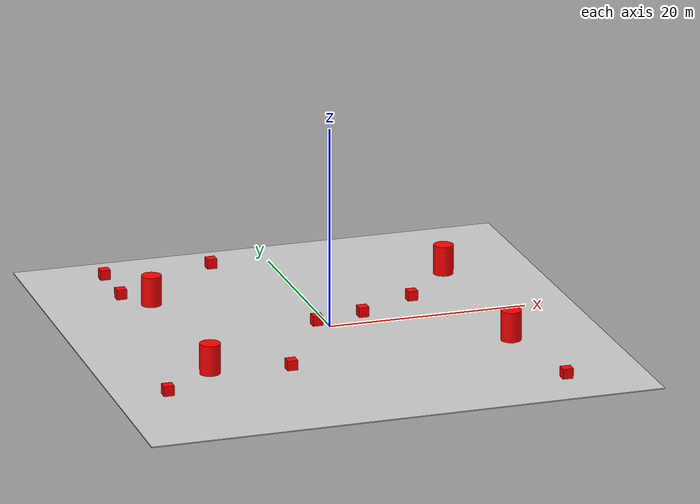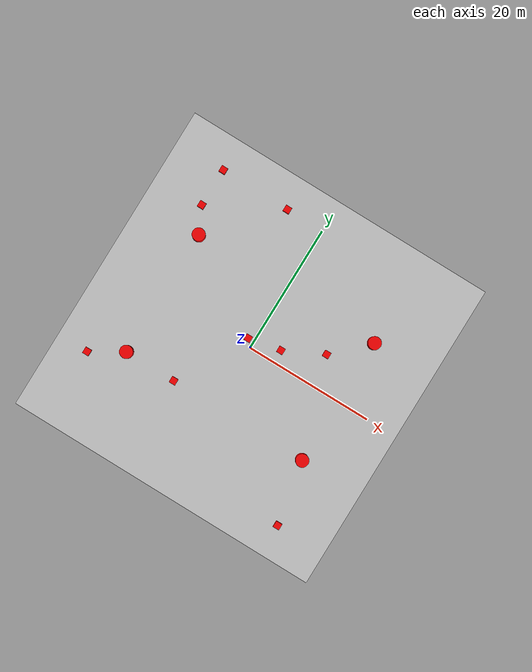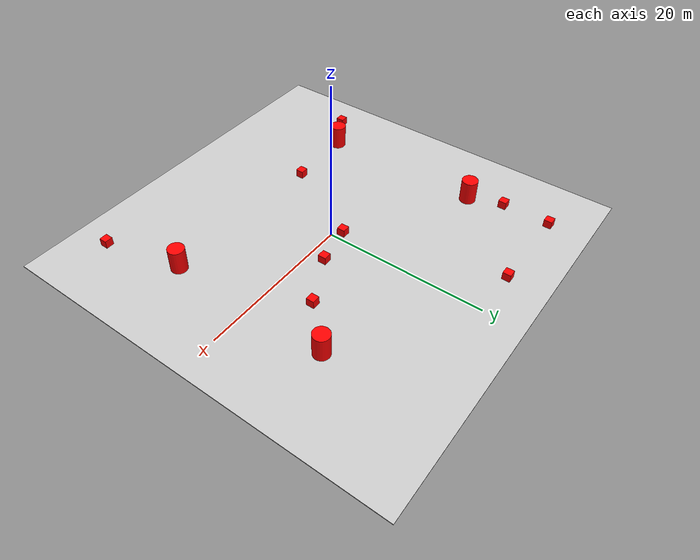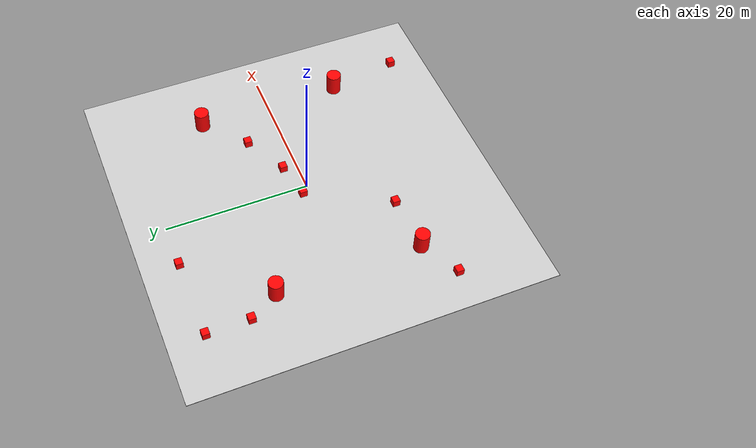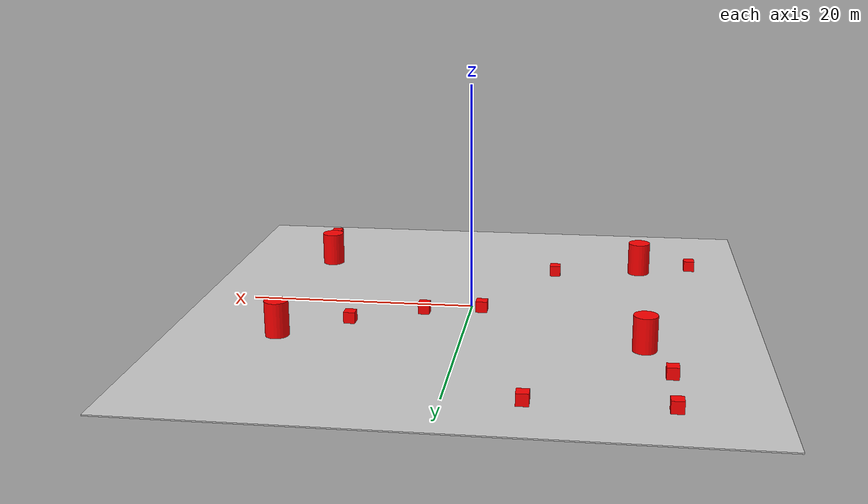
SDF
<?xml version="1.0" ?>
<!--
  Demo world consisting of a thermal camera sensor and several models with
  different temperatures specified via the thermal system plugin.
-->

<sdf version="1.6">
  <world name="thermal_camera">
    <physics name="1ms" type="ignored">
      <max_step_size>0.001</max_step_size>
      <real_time_factor>1.0</real_time_factor>
    </physics>
    <plugin
      filename="ignition-gazebo-physics-system"
      name="ignition::gazebo::systems::Physics">
    </plugin>
    <plugin
      filename="ignition-gazebo-scene-broadcaster-system"
      name="ignition::gazebo::systems::SceneBroadcaster">
    </plugin>
    <plugin
      filename="ignition-gazebo-user-commands-system"
      name="ignition::gazebo::systems::UserCommands">
    </plugin>

    <gui fullscreen="0">

      <!-- 3D scene -->
      <plugin filename="GzScene3D" name="3D View">
        <ignition-gui>
          <title>3D View</title>
          <property type="bool" key="showTitleBar">false</property>
          <property type="string" key="state">docked</property>
        </ignition-gui>

        <engine>ogre2</engine>
        <scene>scene</scene>
        <ambient_light>0.4 0.4 0.4</ambient_light>
        <background_color>0.8 0.8 0.8</background_color>
        <camera_pose>-6 0 6 0 0.5 0</camera_pose>
      </plugin>

      <!-- World control -->
      <plugin filename="WorldControl" name="World control">
        <ignition-gui>
          <title>World control</title>
          <property type="bool" key="showTitleBar">false</property>
          <property type="bool" key="resizable">false</property>
          <property type="double" key="height">72</property>
          <property type="double" key="width">121</property>
          <property type="double" key="z">1</property>

          <property type="string" key="state">floating</property>
          <anchors target="3D View">
            <line own="left" target="left"/>
            <line own="bottom" target="bottom"/>
          </anchors>
        </ignition-gui>

        <play_pause>true</play_pause>
        <step>true</step>
        <start_paused>true</start_paused>
        <service>/world/thermal_camera/control</service>
        <stats_topic>/world/thermal_camera/stats</stats_topic>

      </plugin>

      <!-- World statistics -->
      <plugin filename="WorldStats" name="World stats">
        <ignition-gui>
          <title>World stats</title>
          <property type="bool" key="showTitleBar">false</property>
          <property type="bool" key="resizable">false</property>
          <property type="double" key="height">110</property>
          <property type="double" key="width">290</property>
          <property type="double" key="z">1</property>
          <property type="string" key="state">floating</property>
          <anchors target="3D View">
            <line own="right" target="right"/>
            <line own="bottom" target="bottom"/>
          </anchors>
        </ignition-gui>
        <sim_time>true</sim_time>
        <real_time>true</real_time>
        <real_time_factor>true</real_time_factor>
        <iterations>true</iterations>
        <topic>/world/thermal_camera/stats</topic>
      </plugin>

      <!-- Entitiy Tree -->
      <plugin filename="EntityTree" name="Entity tree">
        <ignition-gui>
          <property type="string" key="state">docked</property>
        </ignition-gui>
      </plugin>

      <!-- Key Publisher -->
      <plugin filename="KeyPublisher" name="Key publisher">
          <ignition-gui>
              <anchors target="3D View">
                  <line own="right" target="right"/>
                  <line own="top" target="top"/>
              </anchors>
              <property key="resizable" type="bool">false</property>
              <property key="width" type="double">5</property>
              <property key="height" type="double">5</property>
              <property key="state" type="string">floating</property>
              <property key="showTitleBar" type="bool">false</property>
          </ignition-gui>
      </plugin>
    </gui>

    <light type="directional" name="sun">
      <cast_shadows>true</cast_shadows>
      <pose>0 0 10 0 0 0</pose>
      <diffuse>0.8 0.8 0.8 1</diffuse>
      <specular>0.2 0.2 0.2 1</specular>
      <attenuation>
        <range>1000</range>
        <constant>0.9</constant>
        <linear>0.01</linear>
        <quadratic>0.001</quadratic>
      </attenuation>
      <direction>-0.5 0.1 -0.9</direction>
    </light>

    <atmosphere type="adiabatic">
      <temperature>250</temperature>
      <temperature_gradient>0.1</temperature_gradient>
    </atmosphere>

    <model name="ground_plane">
      <pose>0 0 -0.25 0 0 0</pose>
      <static>true</static>
      <link name="link">
        <collision name="collision">
          <geometry>
            <box>
              <size>50 50 0.1</size>
            </box>
          </geometry>
        </collision>
        <visual name="visual">
          <geometry>
            <box>
              <size>50 50 0.1</size>
            </box>
          </geometry>
          <material>
            <ambient>0.8 0.8 0.8 1</ambient>
            <diffuse>0.8 0.8 0.8 1</diffuse>
            <specular>0.8 0.8 0.8 1</specular>
          </material>
            <plugin
            filename="ignition-gazebo-thermal-system"
            name="ignition::gazebo::systems::Thermal">
            <temperature>100</temperature>
          </plugin>
        </visual>
      </link>
    </model>

    <!-- Box objects -->

    <model name="box1">
      <pose>-1 1 0.5 0 0 0</pose>
      <link name="box_link">
        <inertial>
          <inertia>
            <ixx>1</ixx>
            <ixy>0</ixy>
            <ixz>0</ixz>
            <iyy>1</iyy>
            <iyz>0</iyz>
            <izz>1</izz>
          </inertia>
          <mass>1.0</mass>
        </inertial>
        <collision name="box_collision">
          <geometry>
            <box>
              <size>1 1 1</size>
            </box>
          </geometry>
        </collision>

        <visual name="box_visual">
          <geometry>
            <box>
              <size>1 1 1</size>
            </box>
          </geometry>
          <material>
            <ambient>1 0 0 1</ambient>
            <diffuse>1 0 0 1</diffuse>
            <specular>1 0 0 1</specular>
          </material>
          <plugin
            filename="ignition-gazebo-thermal-system"
            name="ignition::gazebo::systems::Thermal">
            <temperature>600</temperature>
          </plugin>
        </visual>
      </link>
    </model>

    <model name="box2">
      <pose>4 2 0.5 0 0 0</pose>
      <link name="box_link">
        <inertial>
          <inertia>
            <ixx>1</ixx>
            <ixy>0</ixy>
            <ixz>0</ixz>
            <iyy>1</iyy>
            <iyz>0</iyz>
            <izz>1</izz>
          </inertia>
          <mass>1.0</mass>
        </inertial>
        <collision name="box_collision">
          <geometry>
            <box>
              <size>1 1 1</size>
            </box>
          </geometry>
        </collision>

        <visual name="box_visual">
          <geometry>
            <box>
              <size>1 1 1</size>
            </box>
          </geometry>
          <material>
            <ambient>1 0 0 1</ambient>
            <diffuse>1 0 0 1</diffuse>
            <specular>1 0 0 1</specular>
          </material>
          <plugin
            filename="ignition-gazebo-thermal-system"
            name="ignition::gazebo::systems::Thermal">
            <temperature>500</temperature>
          </plugin>
        </visual>
      </link>
    </model>

    <model name="box3">
      <pose>10 5 0.5 0 0 0</pose>
      <link name="box_link">
        <inertial>
          <inertia>
            <ixx>1</ixx>
            <ixy>0</ixy>
            <ixz>0</ixz>
            <iyy>1</iyy>
            <iyz>0</iyz>
            <izz>1</izz>
          </inertia>
          <mass>1.0</mass>
        </inertial>
        <collision name="box_collision">
          <geometry>
            <box>
              <size>1 1 1</size>
            </box>
          </geometry>
        </collision>

        <visual name="box_visual">
          <geometry>
            <box>
              <size>1 1 1</size>
            </box>
          </geometry>
          <material>
            <ambient>1 0 0 1</ambient>
            <diffuse>1 0 0 1</diffuse>
            <specular>1 0 0 1</specular>
          </material>
          <plugin
            filename="ignition-gazebo-thermal-system"
            name="ignition::gazebo::systems::Thermal">
            <temperature>350</temperature>
          </plugin>
        </visual>
      </link>
    </model>

    <model name="box4">
      <pose>-6 20 0.5 0 0 0</pose>
      <link name="box_link">
        <inertial>
          <inertia>
            <ixx>1</ixx>
            <ixy>0</ixy>
            <ixz>0</ixz>
            <iyy>1</iyy>
            <iyz>0</iyz>
            <izz>1</izz>
          </inertia>
          <mass>1.0</mass>
        </inertial>
        <collision name="box_collision">
          <geometry>
            <box>
              <size>1 1 1</size>
            </box>
          </geometry>
        </collision>

        <visual name="box_visual">
          <geometry>
            <box>
              <size>1 1 1</size>
            </box>
          </geometry>
          <material>
            <ambient>1 0 0 1</ambient>
            <diffuse>1 0 0 1</diffuse>
            <specular>1 0 0 1</specular>
          </material>
          <plugin
            filename="ignition-gazebo-thermal-system"
            name="ignition::gazebo::systems::Thermal">
            <temperature>800</temperature>
          </plugin>
        </visual>
      </link>
    </model>

    <model name="box5">
      <pose>-7 -10 0.5 0 0 0</pose>
      <link name="box_link">
        <inertial>
          <inertia>
            <ixx>1</ixx>
            <ixy>0</ixy>
            <ixz>0</ixz>
            <iyy>1</iyy>
            <iyz>0</iyz>
            <izz>1</izz>
          </inertia>
          <mass>1.0</mass>
        </inertial>
        <collision name="box_collision">
          <geometry>
            <box>
              <size>1 1 1</size>
            </box>
          </geometry>
        </collision>

        <visual name="box_visual">
          <geometry>
            <box>
              <size>1 1 1</size>
            </box>
          </geometry>
          <material>
            <ambient>1 0 0 1</ambient>
            <diffuse>1 0 0 1</diffuse>
            <specular>1 0 0 1</specular>
          </material>
          <plugin
            filename="ignition-gazebo-thermal-system"
            name="ignition::gazebo::systems::Thermal">
            <temperature>750</temperature>
          </plugin>
        </visual>
      </link>
    </model>

    <model name="box6">
      <pose>-20 -13 0.5 0 0 0</pose>
      <link name="box_link">
        <inertial>
          <inertia>
            <ixx>1</ixx>
            <ixy>0</ixy>
            <ixz>0</ixz>
            <iyy>1</iyy>
            <iyz>0</iyz>
            <izz>1</izz>
          </inertia>
          <mass>1.0</mass>
        </inertial>
        <collision name="box_collision">
          <geometry>
            <box>
              <size>1 1 1</size>
            </box>
          </geometry>
        </collision>

        <visual name="box_visual">
          <geometry>
            <box>
              <size>1 1 1</size>
            </box>
          </geometry>
          <material>
            <ambient>1 0 0 1</ambient>
            <diffuse>1 0 0 1</diffuse>
            <specular>1 0 0 1</specular>
          </material>
          <plugin
            filename="ignition-gazebo-thermal-system"
            name="ignition::gazebo::systems::Thermal">
            <temperature>500</temperature>
          </plugin>
        </visual>
      </link>
    </model>

    <model name="box7">
      <pose>-17 20 0.5 0 0 0</pose>
      <link name="box_link">
        <inertial>
          <inertia>
            <ixx>1</ixx>
            <ixy>0</ixy>
            <ixz>0</ixz>
            <iyy>1</iyy>
            <iyz>0</iyz>
            <izz>1</izz>
          </inertia>
          <mass>1.0</mass>
        </inertial>
        <collision name="box_collision">
          <geometry>
            <box>
              <size>1 1 1</size>
            </box>
          </geometry>
        </collision>

        <visual name="box_visual">
          <geometry>
            <box>
              <size>1 1 1</size>
            </box>
          </geometry>
          <material>
            <ambient>1 0 0 1</ambient>
            <diffuse>1 0 0 1</diffuse>
            <specular>1 0 0 1</specular>
          </material>
          <plugin
            filename="ignition-gazebo-thermal-system"
            name="ignition::gazebo::systems::Thermal">
            <temperature>350</temperature>
          </plugin>
        </visual>
      </link>
    </model>

    <model name="box8">
      <pose>-17 14 0.5 0 0 0</pose>
      <link name="box_link">
        <inertial>
          <inertia>
            <ixx>1</ixx>
            <ixy>0</ixy>
            <ixz>0</ixz>
            <iyy>1</iyy>
            <iyz>0</iyz>
            <izz>1</izz>
          </inertia>
          <mass>1.0</mass>
        </inertial>
        <collision name="box_collision">
          <geometry>
            <box>
              <size>1 1 1</size>
            </box>
          </geometry>
        </collision>

        <visual name="box_visual">
          <geometry>
            <box>
              <size>1 1 1</size>
            </box>
          </geometry>
          <material>
            <ambient>1 0 0 1</ambient>
            <diffuse>1 0 0 1</diffuse>
            <specular>1 0 0 1</specular>
          </material>
          <plugin
            filename="ignition-gazebo-thermal-system"
            name="ignition::gazebo::systems::Thermal">
            <temperature>200</temperature>
          </plugin>
        </visual>
      </link>
    </model>

    <model name="box9">
      <pose>17 -20 0.5 0 0 0</pose>
      <link name="box_link">
        <inertial>
          <inertia>
            <ixx>1</ixx>
            <ixy>0</ixy>
            <ixz>0</ixz>
            <iyy>1</iyy>
            <iyz>0</iyz>
            <izz>1</izz>
          </inertia>
          <mass>1.0</mass>
        </inertial>
        <collision name="box_collision">
          <geometry>
            <box>
              <size>1 1 1</size>
            </box>
          </geometry>
        </collision>

        <visual name="box_visual">
          <geometry>
            <box>
              <size>1 1 1</size>
            </box>
          </geometry>
          <material>
            <ambient>1 0 0 1</ambient>
            <diffuse>1 0 0 1</diffuse>
            <specular>1 0 0 1</specular>
          </material>
          <plugin
            filename="ignition-gazebo-thermal-system"
            name="ignition::gazebo::systems::Thermal">
            <temperature>550</temperature>
          </plugin>
        </visual>
      </link>
    </model>

    <!-- Cylinder objects -->

    <model name="cylinder1">
      <pose>-15 -10 2 0 0 0</pose>
      <link name="box_link">
        <inertial>
          <inertia>
            <ixx>1</ixx>
            <ixy>0</ixy>
            <ixz>0</ixz>
            <iyy>1</iyy>
            <iyz>0</iyz>
            <izz>1</izz>
          </inertia>
          <mass>1.0</mass>
        </inertial>
        <collision name="cylinder_collision">
          <geometry>
            <cylinder>
              <radius>1</radius>
              <length>3</length>
            </cylinder>
          </geometry>
        </collision>
        <visual name="cylinder_visual">
          <geometry>
            <cylinder>
              <radius>1</radius>
              <length>3</length>
            </cylinder>
          </geometry>
          <material>
            <ambient>1 0 0 1</ambient>
            <diffuse>1 0 0 1</diffuse>
            <specular>1 0 0 1</specular>
          </material>
          <plugin
            filename="ignition-gazebo-thermal-system"
            name="ignition::gazebo::systems::Thermal">
            <temperature>700</temperature>
          </plugin>
        </visual>
      </link>
    </model>

    <model name="cylinder2">
      <pose>15 -10 2 0 0 0</pose>
      <link name="box_link">
        <inertial>
          <inertia>
            <ixx>1</ixx>
            <ixy>0</ixy>
            <ixz>0</ixz>
            <iyy>1</iyy>
            <iyz>0</iyz>
            <izz>1</izz>
          </inertia>
          <mass>1.0</mass>
        </inertial>
        <collision name="cylinder_collision">
          <geometry>
            <cylinder>
              <radius>1</radius>
              <length>3</length>
            </cylinder>
          </geometry>
        </collision>
        <visual name="cylinder_visual">
          <geometry>
            <cylinder>
              <radius>1</radius>
              <length>3</length>
            </cylinder>
          </geometry>
          <material>
            <ambient>1 0 0 1</ambient>
            <diffuse>1 0 0 1</diffuse>
            <specular>1 0 0 1</specular>
          </material>
          <plugin
            filename="ignition-gazebo-thermal-system"
            name="ignition::gazebo::systems::Thermal">
            <temperature>800</temperature>
          </plugin>
        </visual>
      </link>
    </model>

    <model name="cylinder3">
      <pose>15 10 2 0 0 0</pose>
      <link name="box_link">
        <inertial>
          <inertia>
            <ixx>1</ixx>
            <ixy>0</ixy>
            <ixz>0</ixz>
            <iyy>1</iyy>
            <iyz>0</iyz>
            <izz>1</izz>
          </inertia>
          <mass>1.0</mass>
        </inertial>
        <collision name="cylinder_collision">
          <geometry>
            <cylinder>
              <radius>1</radius>
              <length>3</length>
            </cylinder>
          </geometry>
        </collision>
        <visual name="cylinder_visual">
          <geometry>
            <cylinder>
              <radius>1</radius>
              <length>3</length>
            </cylinder>
          </geometry>
          <material>
            <ambient>1 0 0 1</ambient>
            <diffuse>1 0 0 1</diffuse>
            <specular>1 0 0 1</specular>
          </material>
          <plugin
            filename="ignition-gazebo-thermal-system"
            name="ignition::gazebo::systems::Thermal">
            <temperature>400</temperature>
          </plugin>
        </visual>
      </link>
    </model>

    <model name="cylinder4">
      <pose>-15 10 2 0 0 0</pose>
      <link name="box_link">
        <inertial>
          <inertia>
            <ixx>1</ixx>
            <ixy>0</ixy>
            <ixz>0</ixz>
            <iyy>1</iyy>
            <iyz>0</iyz>
            <izz>1</izz>
          </inertia>
          <mass>1.0</mass>
        </inertial>
        <collision name="cylinder_collision">
          <geometry>
            <cylinder>
              <radius>1</radius>
              <length>3</length>
            </cylinder>
          </geometry>
        </collision>
        <visual name="cylinder_visual">
          <geometry>
            <cylinder>
              <radius>1</radius>
              <length>3</length>
            </cylinder>
          </geometry>
          <material>
            <ambient>1 0 0 1</ambient>
            <diffuse>1 0 0 1</diffuse>
            <specular>1 0 0 1</specular>
          </material>
          <plugin
            filename="ignition-gazebo-thermal-system"
            name="ignition::gazebo::systems::Thermal">
            <temperature>350</temperature>
          </plugin>
        </visual>
      </link>
    </model>

  </world>
</sdf>
